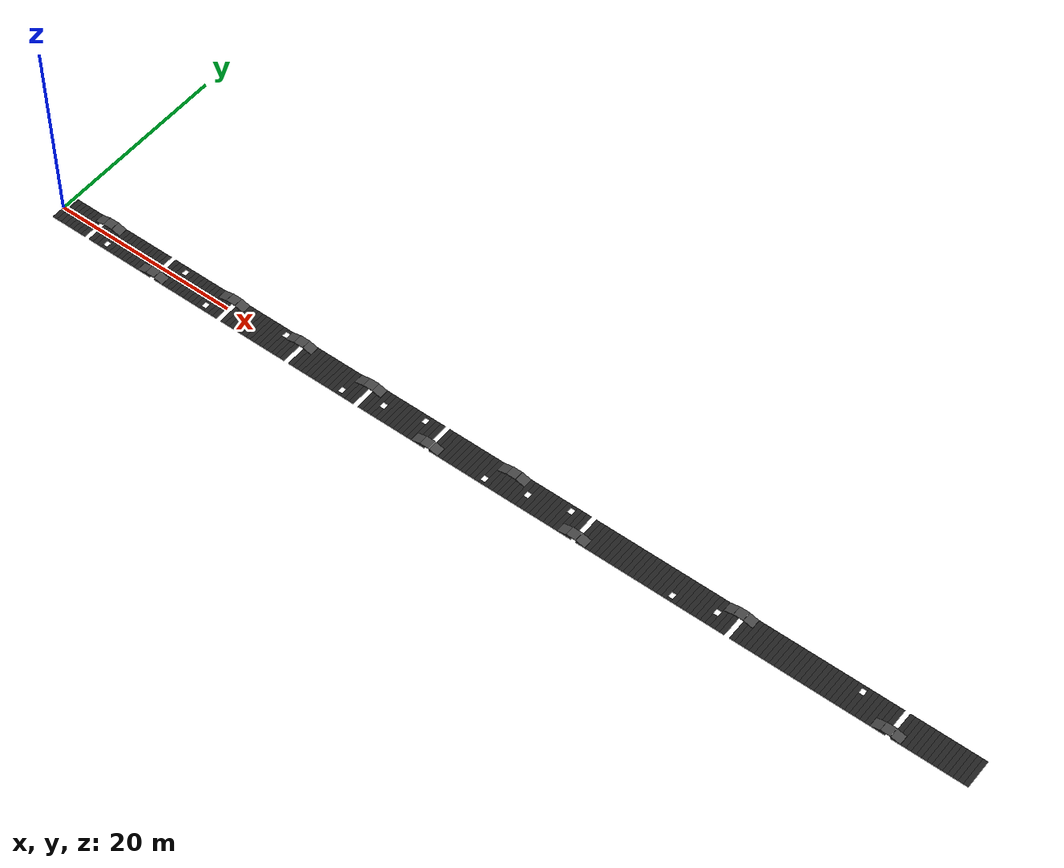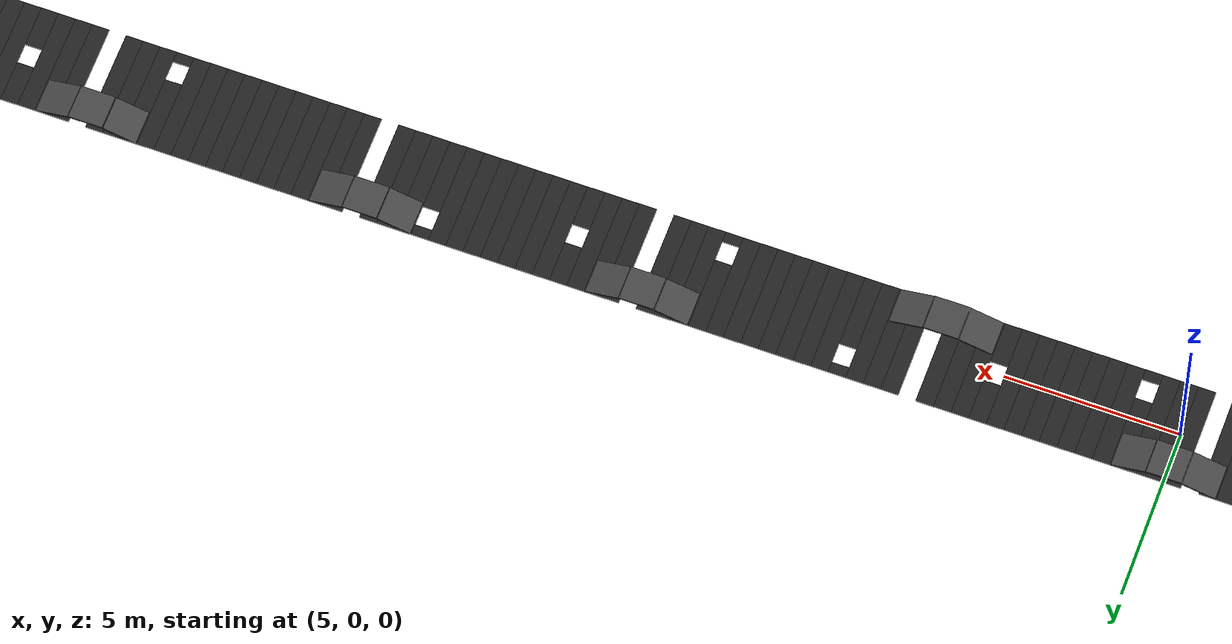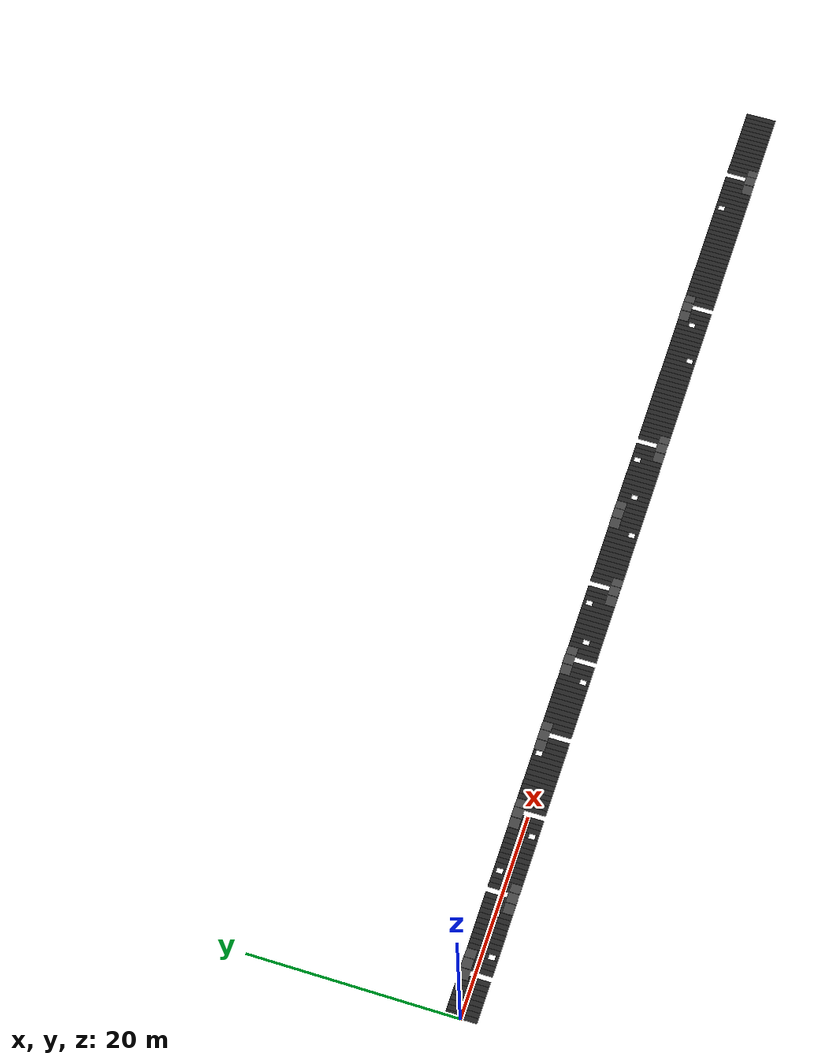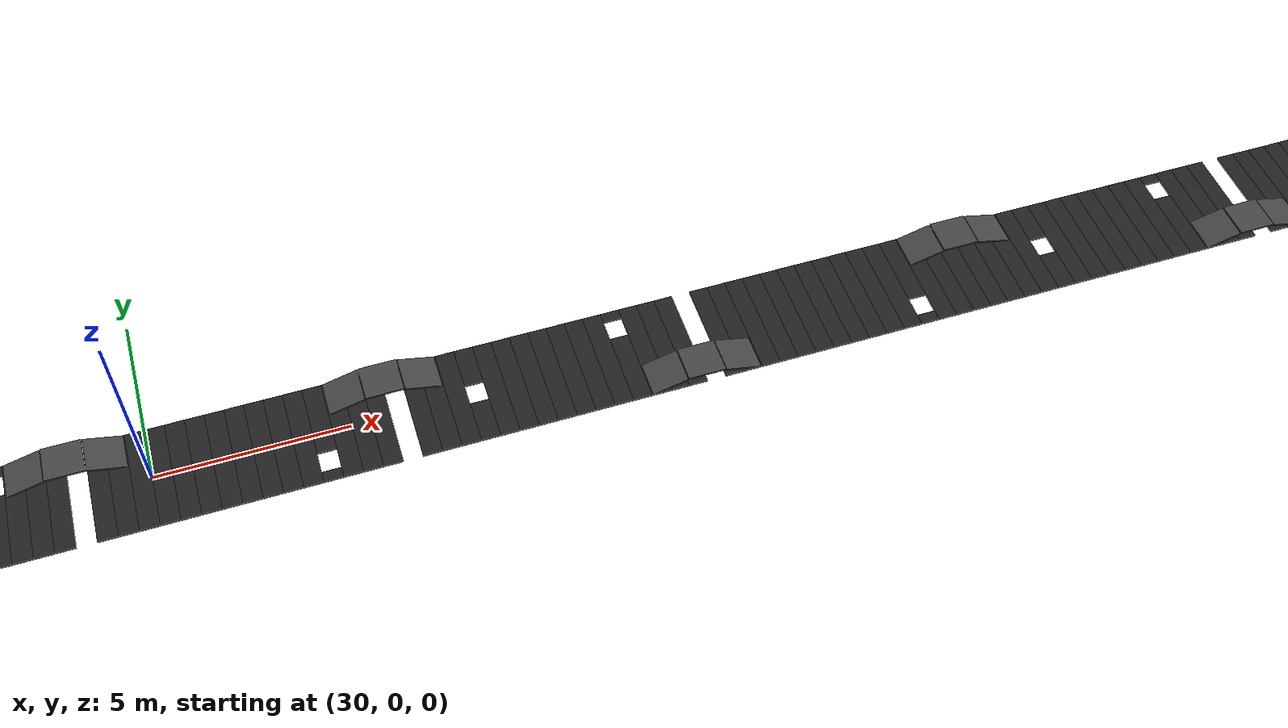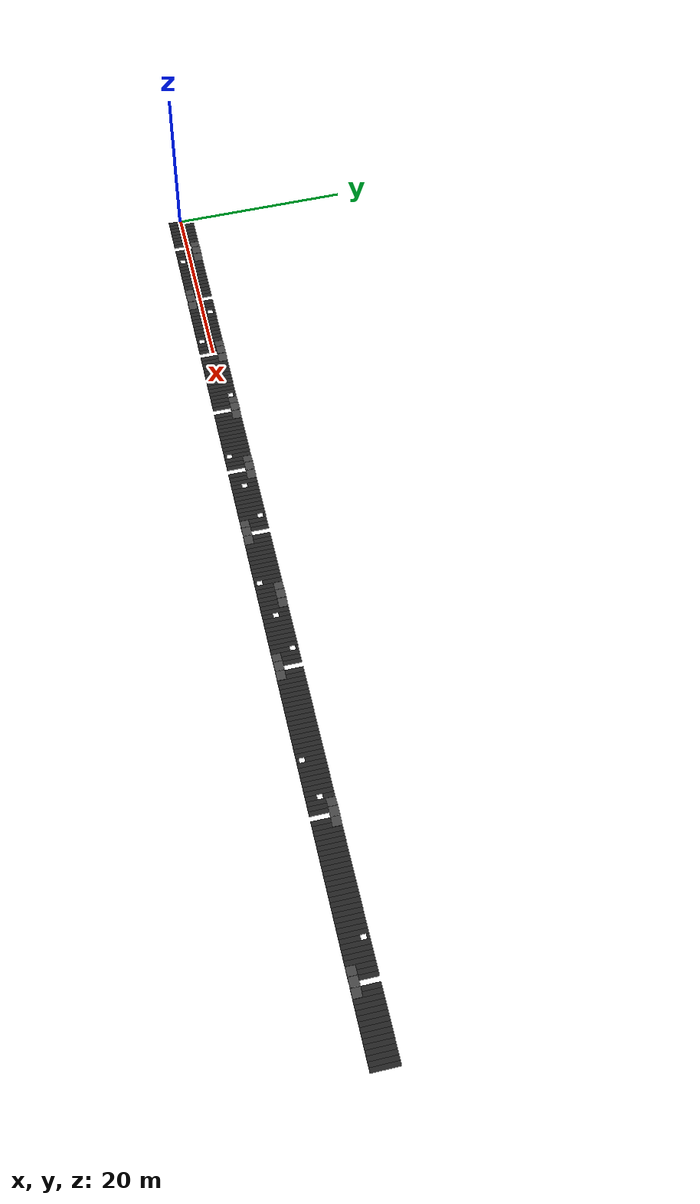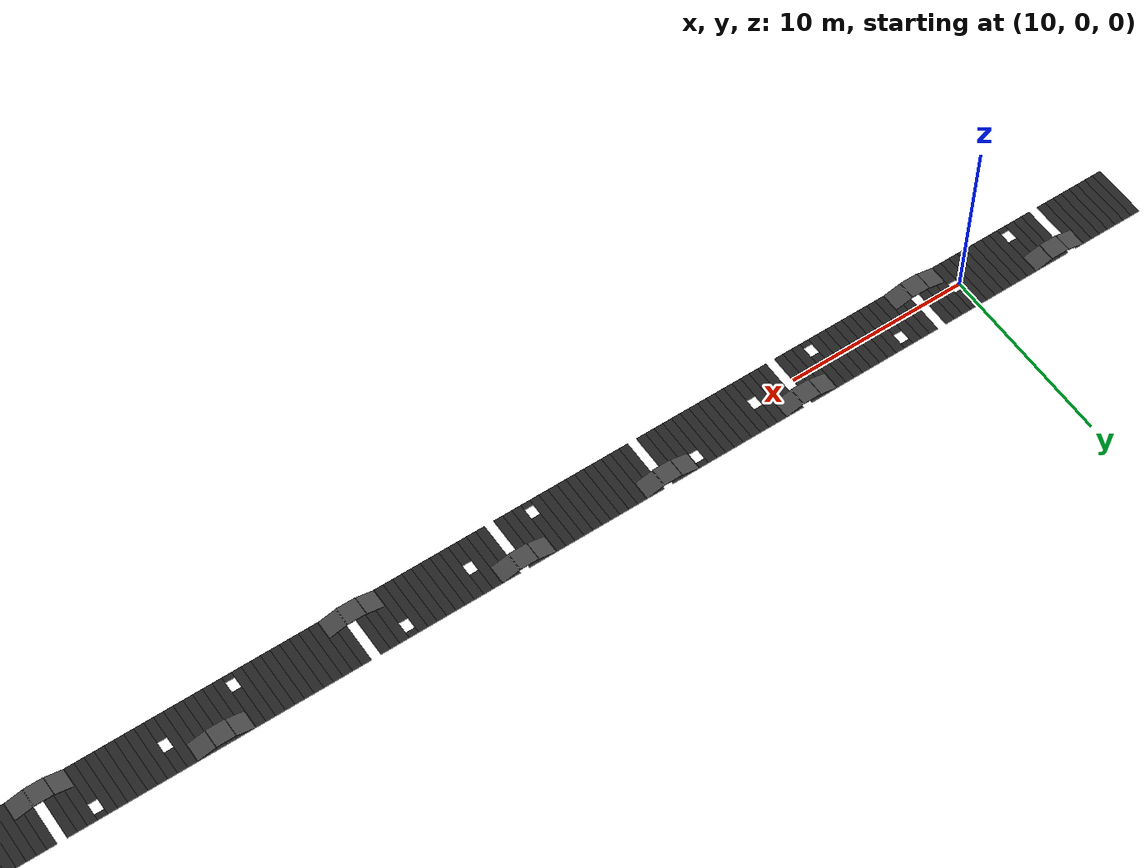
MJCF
<mujoco model="corridor_3x100">
  <compiler angle="degree" autolimits="true"/>
  <option timestep="0.005" gravity="0 0 -9.81"/>
  <size njmax="4000" nconmax="1000"/>
<asset>
    <texture name="tex_grid" type="2d" builtin="checker"
             rgb1="0.1 0.1 0.1" rgb2="0.15 0.15 0.15"
             width="300" height="300"
             mark="edge" markrgb="0.8 0.8 0.8"/>

    <texture name="tex_wall" type="2d" builtin="checker"
             rgb1="0.5 0.5 0.5" rgb2="0.55 0.55 0.55"
             width="300" height="300"/>

    <material name="mat_floor" texture="tex_grid"
              texrepeat="2 2" specular="0.1" shininess="0.1"/>

    <material name="mat_wall" texture="tex_wall"
              texrepeat="1 1" rgba="0.5 0.5 0.5 0" specular="0.3" shininess="0.3"/>

    <material name="mat_bump" texture="tex_wall" rgba="0.5 0.5 0.5 1"
              specular="0.3" shininess="0.3"/>
  </asset>
  <worldbody>
<light name="key_light"
       pos="4 4 4"
       dir="-1 -1 -1"
       directional="true"
       diffuse="1.1 1.1 1.1"  specular="0.4 0.4 0.4"  castshadow="true" />

<light name="fill_light"
       pos="-6 4 2"
       dir="1 -0.5 -1"
       directional="true"
       ambient="0.4 0.4 0.4"   diffuse="0.6 0.6 0.6"   specular="0.2 0.2 0.2"
       castshadow="false" />

    <geom name="wall_left" type="box" size="50.000 0.025 4.000" pos="50.000 -1.525 4.000" material="mat_wall"/>
    <geom name="wall_right" type="box" size="50.000 0.025 4.000" pos="50.000 1.525 4.000" material="mat_wall"/>
    <geom
    name="geom_ramp1_1"
    type="box"
    size="0.5 0.5 0.025"
    pos="4 1 0.15"
    euler="0 -15 0"
    material="mat_bump"
    />
    <geom
    name="geom_ramp1_2"
    type="box"
    size="0.5 0.5 0.025"
    pos="5 1 0.3"
    material="mat_bump"
    />
    <geom
    name="geom_ramp1_3"
    type="box"
    size="0.5 0.5 0.025"
    pos="6 1 0.15"
    euler="0 15 0"
    material="mat_bump"
    />

    <geom
    name="geom_ramp2_1"
    type="box"
    size="0.5 0.5 0.025"
    pos="11 -1 0.15"
    euler="0 -15 0"
    material="mat_bump"
    />
    <geom
    name="geom_ramp2_2"
    type="box"
    size="0.5 0.5 0.025"
    pos="12 -1 0.3"
    material="mat_bump"
    />
    <geom
    name="geom_ramp2_3"
    type="box"
    size="0.5 0.5 0.025"
    pos="13 -1 0.15"
    euler="0 15 0"
    material="mat_bump"
    />

    <geom
    name="geom_ramp3_1"
    type="box"
    size="0.5 0.5 0.025"
    pos="19 1 0.15"
    euler="0 -15 0"
    material="mat_bump"
    />
    <geom
    name="geom_ramp3_2"
    type="box"
    size="0.5 0.5 0.025"
    pos="20 1 0.3"
    material="mat_bump"
    />
    <geom
    name="geom_ramp3_3"
    type="box"
    size="0.5 0.5 0.025"
    pos="21 1 0.15"
    euler="0 15 0"
    material="mat_bump"
    />

    <geom
    name="geom_ramp4_1"
    type="box"
    size="0.5 0.5 0.025"
    pos="27 1 0.15"
    euler="0 -15 0"
    material="mat_bump"
    />
    <geom
    name="geom_ramp4_2"
    type="box"
    size="0.5 0.5 0.025"
    pos="28 1 0.3"
    material="mat_bump"
    />
    <geom
    name="geom_ramp4_3"
    type="box"
    size="0.5 0.5 0.025"
    pos="29 1 0.15"
    euler="0 15 0"
    material="mat_bump"
    />

    <geom
    name="geom_ramp5_1"
    type="box"
    size="0.5 0.5 0.025"
    pos="35 1 0.15"
    euler="0 -15 0"
    material="mat_bump"
    />
    <geom
    name="geom_ramp5_2"
    type="box"
    size="0.5 0.5 0.025"
    pos="36 1 0.3"
    material="mat_bump"
    />
    <geom
    name="geom_ramp5_3"
    type="box"
    size="0.5 0.5 0.025"
    pos="37 1 0.15"
    euler="0 15 0"
    material="mat_bump"
    />

    <geom
    name="geom_ramp6_1"
    type="box"
    size="0.5 0.5 0.025"
    pos="43 -1 0.15"
    euler="0 -15 0"
    material="mat_bump"
    />
    <geom
    name="geom_ramp6_2"
    type="box"
    size="0.5 0.5 0.025"
    pos="44 -1 0.3"
    material="mat_bump"
    />
    <geom
    name="geom_ramp6_3"
    type="box"
    size="0.5 0.5 0.025"
    pos="45 -1 0.15"
    euler="0 15 0"
    material="mat_bump"
    />

    <geom
    name="geom_ramp7_1"
    type="box"
    size="0.5 0.5 0.025"
    pos="51 1 0.15"
    euler="0 -15 0"
    material="mat_bump"
    />
    <geom
    name="geom_ramp7_2"
    type="box"
    size="0.5 0.5 0.025"
    pos="52 1 0.3"
    material="mat_bump"
    />
    <geom
    name="geom_ramp7_3"
    type="box"
    size="0.5 0.5 0.025"
    pos="53 1 0.15"
    euler="0 15 0"
    material="mat_bump"
    />

    <geom
    name="geom_ramp8_1"
    type="box"
    size="0.5 0.5 0.025"
    pos="59 -1 0.15"
    euler="0 -15 0"
    material="mat_bump"
    />
    <geom
    name="geom_ramp8_2"
    type="box"
    size="0.5 0.5 0.025"
    pos="60 -1 0.3"
    material="mat_bump"
    />
    <geom
    name="geom_ramp8_3"
    type="box"
    size="0.5 0.5 0.025"
    pos="61 -1 0.15"
    euler="0 15 0"
    material="mat_bump"
    />

    <geom
    name="geom_ramp9_1"
    type="box"
    size="0.5 0.5 0.025"
    pos="75 1 0.15"
    euler="0 -15 0"
    material="mat_bump"
    />
    <geom
    name="geom_ramp9_2"
    type="box"
    size="0.5 0.5 0.025"
    pos="76 1 0.3"
    material="mat_bump"
    />
    <geom
    name="geom_ramp9_3"
    type="box"
    size="0.5 0.5 0.025"
    pos="77 1 0.15"
    euler="0 15 0"
    material="mat_bump"
    />

    <geom
    name="geom_ramp10_1"
    type="box"
    size="0.5 0.5 0.025"
    pos="91 -1 0.15"
    euler="0 -15 0"
    material="mat_bump"
    />
    <geom
    name="geom_ramp10_2"
    type="box"
    size="0.5 0.5 0.025"
    pos="92 -1 0.3"
    material="mat_bump"
    />
    <geom
    name="geom_ramp10_3"
    type="box"
    size="0.5 0.5 0.025"
    pos="93 -1 0.15"
    euler="0 15 0"
    material="mat_bump"
    />
    <geom type="box" name="cell_0_3" material="mat_floor" size="0.250 1.500 0.025" pos="0.250 0.000 0.025"/>
    <geom type="box" name="cell_1_3" material="mat_floor" size="0.250 1.500 0.025" pos="0.750 0.000 0.025"/>
    <geom type="box" name="cell_2_3" material="mat_floor" size="0.250 1.500 0.025" pos="1.250 0.000 0.025"/>
    <geom type="box" name="cell_3_3" material="mat_floor" size="0.250 1.500 0.025" pos="1.750 0.000 0.025"/>
    <geom type="box" name="cell_4_3" material="mat_floor" size="0.250 1.500 0.025" pos="2.250 0.000 0.025"/>
    <geom type="box" name="cell_5_3" material="mat_floor" size="0.250 1.500 0.025" pos="2.750 0.000 0.025"/>
    <geom type="box" name="cell_6_3" material="mat_floor" size="0.250 1.500 0.025" pos="3.250 0.000 0.025"/>
    <geom type="box" name="cell_7_3" material="mat_floor" size="0.250 1.500 0.025" pos="3.750 0.000 0.025"/>
    <geom type="box" name="cell_9_3" material="mat_floor" size="0.250 1.500 0.025" pos="4.750 0.000 0.025"/>
    <geom type="box" name="cell_10_3" material="mat_floor" size="0.250 1.500 0.025" pos="5.250 0.000 0.025"/>
    <geom type="box" name="cell_11_3" material="mat_floor" size="0.250 1.500 0.025" pos="5.750 0.000 0.025"/>
    <geom type="box" name="cell_12_0" material="mat_floor" size="0.250 0.150 0.025" pos="6.250 -1.350 0.025"/>
    <geom type="box" name="cell_12_3" material="mat_floor" size="0.250 1.050 0.025" pos="6.250 0.450 0.025"/>
    <geom type="box" name="cell_13_3" material="mat_floor" size="0.250 1.500 0.025" pos="6.750 0.000 0.025"/>
    <geom type="box" name="cell_14_3" material="mat_floor" size="0.250 1.500 0.025" pos="7.250 0.000 0.025"/>
    <geom type="box" name="cell_15_3" material="mat_floor" size="0.250 1.500 0.025" pos="7.750 0.000 0.025"/>
    <geom type="box" name="cell_16_3" material="mat_floor" size="0.250 1.500 0.025" pos="8.250 0.000 0.025"/>
    <geom type="box" name="cell_17_3" material="mat_floor" size="0.250 1.500 0.025" pos="8.750 0.000 0.025"/>
    <geom type="box" name="cell_18_3" material="mat_floor" size="0.250 1.500 0.025" pos="9.250 0.000 0.025"/>
    <geom type="box" name="cell_19_3" material="mat_floor" size="0.250 1.500 0.025" pos="9.750 0.000 0.025"/>
    <geom type="box" name="cell_20_1" material="mat_floor" size="0.250 0.600 0.025" pos="10.250 -0.900 0.025"/>
    <geom type="box" name="cell_20_4" material="mat_floor" size="0.250 0.600 0.025" pos="10.250 0.900 0.025"/>
    <geom type="box" name="cell_21_3" material="mat_floor" size="0.250 1.500 0.025" pos="10.750 0.000 0.025"/>
    <geom type="box" name="cell_22_3" material="mat_floor" size="0.250 1.500 0.025" pos="11.250 0.000 0.025"/>
    <geom type="box" name="cell_23_3" material="mat_floor" size="0.250 1.500 0.025" pos="11.750 0.000 0.025"/>
    <geom type="box" name="cell_25_3" material="mat_floor" size="0.250 1.500 0.025" pos="12.750 0.000 0.025"/>
    <geom type="box" name="cell_26_3" material="mat_floor" size="0.250 1.500 0.025" pos="13.250 0.000 0.025"/>
    <geom type="box" name="cell_27_3" material="mat_floor" size="0.250 1.500 0.025" pos="13.750 0.000 0.025"/>
    <geom type="box" name="cell_28_2" material="mat_floor" size="0.250 1.050 0.025" pos="14.250 -0.450 0.025"/>
    <geom type="box" name="cell_28_5" material="mat_floor" size="0.250 0.150 0.025" pos="14.250 1.350 0.025"/>
    <geom type="box" name="cell_29_3" material="mat_floor" size="0.250 1.500 0.025" pos="14.750 0.000 0.025"/>
    <geom type="box" name="cell_30_3" material="mat_floor" size="0.250 1.500 0.025" pos="15.250 0.000 0.025"/>
    <geom type="box" name="cell_31_3" material="mat_floor" size="0.250 1.500 0.025" pos="15.750 0.000 0.025"/>
    <geom type="box" name="cell_32_3" material="mat_floor" size="0.250 1.500 0.025" pos="16.250 0.000 0.025"/>
    <geom type="box" name="cell_33_3" material="mat_floor" size="0.250 1.500 0.025" pos="16.750 0.000 0.025"/>
    <geom type="box" name="cell_34_3" material="mat_floor" size="0.250 1.500 0.025" pos="17.250 0.000 0.025"/>
    <geom type="box" name="cell_35_3" material="mat_floor" size="0.250 1.500 0.025" pos="17.750 0.000 0.025"/>
    <geom type="box" name="cell_36_0" material="mat_floor" size="0.250 0.150 0.025" pos="18.250 -1.350 0.025"/>
    <geom type="box" name="cell_36_3" material="mat_floor" size="0.250 1.050 0.025" pos="18.250 0.450 0.025"/>
    <geom type="box" name="cell_37_3" material="mat_floor" size="0.250 1.500 0.025" pos="18.750 0.000 0.025"/>
    <geom type="box" name="cell_38_3" material="mat_floor" size="0.250 1.500 0.025" pos="19.250 0.000 0.025"/>
    <geom type="box" name="cell_39_3" material="mat_floor" size="0.250 1.500 0.025" pos="19.750 0.000 0.025"/>
    <geom type="box" name="cell_41_3" material="mat_floor" size="0.250 1.500 0.025" pos="20.750 0.000 0.025"/>
    <geom type="box" name="cell_42_3" material="mat_floor" size="0.250 1.500 0.025" pos="21.250 0.000 0.025"/>
    <geom type="box" name="cell_43_3" material="mat_floor" size="0.250 1.500 0.025" pos="21.750 0.000 0.025"/>
    <geom type="box" name="cell_44_1" material="mat_floor" size="0.250 0.600 0.025" pos="22.250 -0.900 0.025"/>
    <geom type="box" name="cell_44_4" material="mat_floor" size="0.250 0.600 0.025" pos="22.250 0.900 0.025"/>
    <geom type="box" name="cell_45_3" material="mat_floor" size="0.250 1.500 0.025" pos="22.750 0.000 0.025"/>
    <geom type="box" name="cell_46_3" material="mat_floor" size="0.250 1.500 0.025" pos="23.250 0.000 0.025"/>
    <geom type="box" name="cell_47_3" material="mat_floor" size="0.250 1.500 0.025" pos="23.750 0.000 0.025"/>
    <geom type="box" name="cell_48_3" material="mat_floor" size="0.250 1.500 0.025" pos="24.250 0.000 0.025"/>
    <geom type="box" name="cell_49_3" material="mat_floor" size="0.250 1.500 0.025" pos="24.750 0.000 0.025"/>
    <geom type="box" name="cell_50_3" material="mat_floor" size="0.250 1.500 0.025" pos="25.250 0.000 0.025"/>
    <geom type="box" name="cell_51_3" material="mat_floor" size="0.250 1.500 0.025" pos="25.750 0.000 0.025"/>
    <geom type="box" name="cell_52_2" material="mat_floor" size="0.250 1.050 0.025" pos="26.250 -0.450 0.025"/>
    <geom type="box" name="cell_52_5" material="mat_floor" size="0.250 0.150 0.025" pos="26.250 1.350 0.025"/>
    <geom type="box" name="cell_53_3" material="mat_floor" size="0.250 1.500 0.025" pos="26.750 0.000 0.025"/>
    <geom type="box" name="cell_54_3" material="mat_floor" size="0.250 1.500 0.025" pos="27.250 0.000 0.025"/>
    <geom type="box" name="cell_55_3" material="mat_floor" size="0.250 1.500 0.025" pos="27.750 0.000 0.025"/>
    <geom type="box" name="cell_57_3" material="mat_floor" size="0.250 1.500 0.025" pos="28.750 0.000 0.025"/>
    <geom type="box" name="cell_58_3" material="mat_floor" size="0.250 1.500 0.025" pos="29.250 0.000 0.025"/>
    <geom type="box" name="cell_59_3" material="mat_floor" size="0.250 1.500 0.025" pos="29.750 0.000 0.025"/>
    <geom type="box" name="cell_60_3" material="mat_floor" size="0.250 1.500 0.025" pos="30.250 0.000 0.025"/>
    <geom type="box" name="cell_61_3" material="mat_floor" size="0.250 1.500 0.025" pos="30.750 0.000 0.025"/>
    <geom type="box" name="cell_62_3" material="mat_floor" size="0.250 1.500 0.025" pos="31.250 0.000 0.025"/>
    <geom type="box" name="cell_63_3" material="mat_floor" size="0.250 1.500 0.025" pos="31.750 0.000 0.025"/>
    <geom type="box" name="cell_64_3" material="mat_floor" size="0.250 1.500 0.025" pos="32.250 0.000 0.025"/>
    <geom type="box" name="cell_65_3" material="mat_floor" size="0.250 1.500 0.025" pos="32.750 0.000 0.025"/>
    <geom type="box" name="cell_66_3" material="mat_floor" size="0.250 1.500 0.025" pos="33.250 0.000 0.025"/>
    <geom type="box" name="cell_67_3" material="mat_floor" size="0.250 1.500 0.025" pos="33.750 0.000 0.025"/>
    <geom type="box" name="cell_68_0" material="mat_floor" size="0.250 0.150 0.025" pos="34.250 -1.350 0.025"/>
    <geom type="box" name="cell_68_3" material="mat_floor" size="0.250 1.050 0.025" pos="34.250 0.450 0.025"/>
    <geom type="box" name="cell_69_3" material="mat_floor" size="0.250 1.500 0.025" pos="34.750 0.000 0.025"/>
    <geom type="box" name="cell_70_3" material="mat_floor" size="0.250 1.500 0.025" pos="35.250 0.000 0.025"/>
    <geom type="box" name="cell_71_3" material="mat_floor" size="0.250 1.500 0.025" pos="35.750 0.000 0.025"/>
    <geom type="box" name="cell_73_3" material="mat_floor" size="0.250 1.500 0.025" pos="36.750 0.000 0.025"/>
    <geom type="box" name="cell_74_3" material="mat_floor" size="0.250 1.500 0.025" pos="37.250 0.000 0.025"/>
    <geom type="box" name="cell_75_3" material="mat_floor" size="0.250 1.500 0.025" pos="37.750 0.000 0.025"/>
    <geom type="box" name="cell_76_1" material="mat_floor" size="0.250 0.600 0.025" pos="38.250 -0.900 0.025"/>
    <geom type="box" name="cell_76_4" material="mat_floor" size="0.250 0.600 0.025" pos="38.250 0.900 0.025"/>
    <geom type="box" name="cell_77_3" material="mat_floor" size="0.250 1.500 0.025" pos="38.750 0.000 0.025"/>
    <geom type="box" name="cell_78_3" material="mat_floor" size="0.250 1.500 0.025" pos="39.250 0.000 0.025"/>
    <geom type="box" name="cell_79_3" material="mat_floor" size="0.250 1.500 0.025" pos="39.750 0.000 0.025"/>
    <geom type="box" name="cell_80_3" material="mat_floor" size="0.250 1.500 0.025" pos="40.250 0.000 0.025"/>
    <geom type="box" name="cell_81_3" material="mat_floor" size="0.250 1.500 0.025" pos="40.750 0.000 0.025"/>
    <geom type="box" name="cell_82_3" material="mat_floor" size="0.250 1.500 0.025" pos="41.250 0.000 0.025"/>
    <geom type="box" name="cell_83_3" material="mat_floor" size="0.250 1.500 0.025" pos="41.750 0.000 0.025"/>
    <geom type="box" name="cell_84_2" material="mat_floor" size="0.250 1.050 0.025" pos="42.250 -0.450 0.025"/>
    <geom type="box" name="cell_84_5" material="mat_floor" size="0.250 0.150 0.025" pos="42.250 1.350 0.025"/>
    <geom type="box" name="cell_85_3" material="mat_floor" size="0.250 1.500 0.025" pos="42.750 0.000 0.025"/>
    <geom type="box" name="cell_86_3" material="mat_floor" size="0.250 1.500 0.025" pos="43.250 0.000 0.025"/>
    <geom type="box" name="cell_87_3" material="mat_floor" size="0.250 1.500 0.025" pos="43.750 0.000 0.025"/>
    <geom type="box" name="cell_89_3" material="mat_floor" size="0.250 1.500 0.025" pos="44.750 0.000 0.025"/>
    <geom type="box" name="cell_90_3" material="mat_floor" size="0.250 1.500 0.025" pos="45.250 0.000 0.025"/>
    <geom type="box" name="cell_91_3" material="mat_floor" size="0.250 1.500 0.025" pos="45.750 0.000 0.025"/>
    <geom type="box" name="cell_92_3" material="mat_floor" size="0.250 1.500 0.025" pos="46.250 0.000 0.025"/>
    <geom type="box" name="cell_93_3" material="mat_floor" size="0.250 1.500 0.025" pos="46.750 0.000 0.025"/>
    <geom type="box" name="cell_94_3" material="mat_floor" size="0.250 1.500 0.025" pos="47.250 0.000 0.025"/>
    <geom type="box" name="cell_95_3" material="mat_floor" size="0.250 1.500 0.025" pos="47.750 0.000 0.025"/>
    <geom type="box" name="cell_96_3" material="mat_floor" size="0.250 1.500 0.025" pos="48.250 0.000 0.025"/>
    <geom type="box" name="cell_97_3" material="mat_floor" size="0.250 1.500 0.025" pos="48.750 0.000 0.025"/>
    <geom type="box" name="cell_98_3" material="mat_floor" size="0.250 1.500 0.025" pos="49.250 0.000 0.025"/>
    <geom type="box" name="cell_99_3" material="mat_floor" size="0.250 1.500 0.025" pos="49.750 0.000 0.025"/>
    <geom type="box" name="cell_100_0" material="mat_floor" size="0.250 0.150 0.025" pos="50.250 -1.350 0.025"/>
    <geom type="box" name="cell_100_3" material="mat_floor" size="0.250 1.050 0.025" pos="50.250 0.450 0.025"/>
    <geom type="box" name="cell_101_3" material="mat_floor" size="0.250 1.500 0.025" pos="50.750 0.000 0.025"/>
    <geom type="box" name="cell_102_3" material="mat_floor" size="0.250 1.500 0.025" pos="51.250 0.000 0.025"/>
    <geom type="box" name="cell_103_3" material="mat_floor" size="0.250 1.500 0.025" pos="51.750 0.000 0.025"/>
    <geom type="box" name="cell_104_3" material="mat_floor" size="0.250 1.500 0.025" pos="52.250 0.000 0.025"/>
    <geom type="box" name="cell_105_3" material="mat_floor" size="0.250 1.500 0.025" pos="52.750 0.000 0.025"/>
    <geom type="box" name="cell_106_3" material="mat_floor" size="0.250 1.500 0.025" pos="53.250 0.000 0.025"/>
    <geom type="box" name="cell_107_3" material="mat_floor" size="0.250 1.500 0.025" pos="53.750 0.000 0.025"/>
    <geom type="box" name="cell_108_1" material="mat_floor" size="0.250 0.600 0.025" pos="54.250 -0.900 0.025"/>
    <geom type="box" name="cell_108_4" material="mat_floor" size="0.250 0.600 0.025" pos="54.250 0.900 0.025"/>
    <geom type="box" name="cell_109_3" material="mat_floor" size="0.250 1.500 0.025" pos="54.750 0.000 0.025"/>
    <geom type="box" name="cell_110_3" material="mat_floor" size="0.250 1.500 0.025" pos="55.250 0.000 0.025"/>
    <geom type="box" name="cell_111_3" material="mat_floor" size="0.250 1.500 0.025" pos="55.750 0.000 0.025"/>
    <geom type="box" name="cell_112_3" material="mat_floor" size="0.250 1.500 0.025" pos="56.250 0.000 0.025"/>
    <geom type="box" name="cell_113_3" material="mat_floor" size="0.250 1.500 0.025" pos="56.750 0.000 0.025"/>
    <geom type="box" name="cell_114_3" material="mat_floor" size="0.250 1.500 0.025" pos="57.250 0.000 0.025"/>
    <geom type="box" name="cell_115_3" material="mat_floor" size="0.250 1.500 0.025" pos="57.750 0.000 0.025"/>
    <geom type="box" name="cell_116_2" material="mat_floor" size="0.250 1.050 0.025" pos="58.250 -0.450 0.025"/>
    <geom type="box" name="cell_116_5" material="mat_floor" size="0.250 0.150 0.025" pos="58.250 1.350 0.025"/>
    <geom type="box" name="cell_117_3" material="mat_floor" size="0.250 1.500 0.025" pos="58.750 0.000 0.025"/>
    <geom type="box" name="cell_118_3" material="mat_floor" size="0.250 1.500 0.025" pos="59.250 0.000 0.025"/>
    <geom type="box" name="cell_119_3" material="mat_floor" size="0.250 1.500 0.025" pos="59.750 0.000 0.025"/>
    <geom type="box" name="cell_121_3" material="mat_floor" size="0.250 1.500 0.025" pos="60.750 0.000 0.025"/>
    <geom type="box" name="cell_122_3" material="mat_floor" size="0.250 1.500 0.025" pos="61.250 0.000 0.025"/>
    <geom type="box" name="cell_123_3" material="mat_floor" size="0.250 1.500 0.025" pos="61.750 0.000 0.025"/>
    <geom type="box" name="cell_124_3" material="mat_floor" size="0.250 1.500 0.025" pos="62.250 0.000 0.025"/>
    <geom type="box" name="cell_125_3" material="mat_floor" size="0.250 1.500 0.025" pos="62.750 0.000 0.025"/>
    <geom type="box" name="cell_126_3" material="mat_floor" size="0.250 1.500 0.025" pos="63.250 0.000 0.025"/>
    <geom type="box" name="cell_127_3" material="mat_floor" size="0.250 1.500 0.025" pos="63.750 0.000 0.025"/>
    <geom type="box" name="cell_128_3" material="mat_floor" size="0.250 1.500 0.025" pos="64.250 0.000 0.025"/>
    <geom type="box" name="cell_129_3" material="mat_floor" size="0.250 1.500 0.025" pos="64.750 0.000 0.025"/>
    <geom type="box" name="cell_130_3" material="mat_floor" size="0.250 1.500 0.025" pos="65.250 0.000 0.025"/>
    <geom type="box" name="cell_131_3" material="mat_floor" size="0.250 1.500 0.025" pos="65.750 0.000 0.025"/>
    <geom type="box" name="cell_132_3" material="mat_floor" size="0.250 1.500 0.025" pos="66.250 0.000 0.025"/>
    <geom type="box" name="cell_133_3" material="mat_floor" size="0.250 1.500 0.025" pos="66.750 0.000 0.025"/>
    <geom type="box" name="cell_134_3" material="mat_floor" size="0.250 1.500 0.025" pos="67.250 0.000 0.025"/>
    <geom type="box" name="cell_135_3" material="mat_floor" size="0.250 1.500 0.025" pos="67.750 0.000 0.025"/>
    <geom type="box" name="cell_136_3" material="mat_floor" size="0.250 1.500 0.025" pos="68.250 0.000 0.025"/>
    <geom type="box" name="cell_137_3" material="mat_floor" size="0.250 1.500 0.025" pos="68.750 0.000 0.025"/>
    <geom type="box" name="cell_138_3" material="mat_floor" size="0.250 1.500 0.025" pos="69.250 0.000 0.025"/>
    <geom type="box" name="cell_139_3" material="mat_floor" size="0.250 1.500 0.025" pos="69.750 0.000 0.025"/>
    <geom type="box" name="cell_140_0" material="mat_floor" size="0.250 0.150 0.025" pos="70.250 -1.350 0.025"/>
    <geom type="box" name="cell_140_3" material="mat_floor" size="0.250 1.050 0.025" pos="70.250 0.450 0.025"/>
    <geom type="box" name="cell_141_3" material="mat_floor" size="0.250 1.500 0.025" pos="70.750 0.000 0.025"/>
    <geom type="box" name="cell_142_3" material="mat_floor" size="0.250 1.500 0.025" pos="71.250 0.000 0.025"/>
    <geom type="box" name="cell_143_3" material="mat_floor" size="0.250 1.500 0.025" pos="71.750 0.000 0.025"/>
    <geom type="box" name="cell_144_3" material="mat_floor" size="0.250 1.500 0.025" pos="72.250 0.000 0.025"/>
    <geom type="box" name="cell_145_3" material="mat_floor" size="0.250 1.500 0.025" pos="72.750 0.000 0.025"/>
    <geom type="box" name="cell_146_3" material="mat_floor" size="0.250 1.500 0.025" pos="73.250 0.000 0.025"/>
    <geom type="box" name="cell_147_3" material="mat_floor" size="0.250 1.500 0.025" pos="73.750 0.000 0.025"/>
    <geom type="box" name="cell_148_1" material="mat_floor" size="0.250 0.600 0.025" pos="74.250 -0.900 0.025"/>
    <geom type="box" name="cell_148_4" material="mat_floor" size="0.250 0.600 0.025" pos="74.250 0.900 0.025"/>
    <geom type="box" name="cell_149_3" material="mat_floor" size="0.250 1.500 0.025" pos="74.750 0.000 0.025"/>
    <geom type="box" name="cell_150_3" material="mat_floor" size="0.250 1.500 0.025" pos="75.250 0.000 0.025"/>
    <geom type="box" name="cell_151_3" material="mat_floor" size="0.250 1.500 0.025" pos="75.750 0.000 0.025"/>
    <geom type="box" name="cell_153_3" material="mat_floor" size="0.250 1.500 0.025" pos="76.750 0.000 0.025"/>
    <geom type="box" name="cell_154_3" material="mat_floor" size="0.250 1.500 0.025" pos="77.250 0.000 0.025"/>
    <geom type="box" name="cell_155_3" material="mat_floor" size="0.250 1.500 0.025" pos="77.750 0.000 0.025"/>
    <geom type="box" name="cell_156_3" material="mat_floor" size="0.250 1.500 0.025" pos="78.250 0.000 0.025"/>
    <geom type="box" name="cell_157_3" material="mat_floor" size="0.250 1.500 0.025" pos="78.750 0.000 0.025"/>
    <geom type="box" name="cell_158_3" material="mat_floor" size="0.250 1.500 0.025" pos="79.250 0.000 0.025"/>
    <geom type="box" name="cell_159_3" material="mat_floor" size="0.250 1.500 0.025" pos="79.750 0.000 0.025"/>
    <geom type="box" name="cell_160_3" material="mat_floor" size="0.250 1.500 0.025" pos="80.250 0.000 0.025"/>
    <geom type="box" name="cell_161_3" material="mat_floor" size="0.250 1.500 0.025" pos="80.750 0.000 0.025"/>
    <geom type="box" name="cell_162_3" material="mat_floor" size="0.250 1.500 0.025" pos="81.250 0.000 0.025"/>
    <geom type="box" name="cell_163_3" material="mat_floor" size="0.250 1.500 0.025" pos="81.750 0.000 0.025"/>
    <geom type="box" name="cell_164_3" material="mat_floor" size="0.250 1.500 0.025" pos="82.250 0.000 0.025"/>
    <geom type="box" name="cell_165_3" material="mat_floor" size="0.250 1.500 0.025" pos="82.750 0.000 0.025"/>
    <geom type="box" name="cell_166_3" material="mat_floor" size="0.250 1.500 0.025" pos="83.250 0.000 0.025"/>
    <geom type="box" name="cell_167_3" material="mat_floor" size="0.250 1.500 0.025" pos="83.750 0.000 0.025"/>
    <geom type="box" name="cell_168_3" material="mat_floor" size="0.250 1.500 0.025" pos="84.250 0.000 0.025"/>
    <geom type="box" name="cell_169_3" material="mat_floor" size="0.250 1.500 0.025" pos="84.750 0.000 0.025"/>
    <geom type="box" name="cell_170_3" material="mat_floor" size="0.250 1.500 0.025" pos="85.250 0.000 0.025"/>
    <geom type="box" name="cell_171_3" material="mat_floor" size="0.250 1.500 0.025" pos="85.750 0.000 0.025"/>
    <geom type="box" name="cell_172_3" material="mat_floor" size="0.250 1.500 0.025" pos="86.250 0.000 0.025"/>
    <geom type="box" name="cell_173_3" material="mat_floor" size="0.250 1.500 0.025" pos="86.750 0.000 0.025"/>
    <geom type="box" name="cell_174_3" material="mat_floor" size="0.250 1.500 0.025" pos="87.250 0.000 0.025"/>
    <geom type="box" name="cell_175_3" material="mat_floor" size="0.250 1.500 0.025" pos="87.750 0.000 0.025"/>
    <geom type="box" name="cell_176_2" material="mat_floor" size="0.250 1.050 0.025" pos="88.250 -0.450 0.025"/>
    <geom type="box" name="cell_176_5" material="mat_floor" size="0.250 0.150 0.025" pos="88.250 1.350 0.025"/>
    <geom type="box" name="cell_177_3" material="mat_floor" size="0.250 1.500 0.025" pos="88.750 0.000 0.025"/>
    <geom type="box" name="cell_178_3" material="mat_floor" size="0.250 1.500 0.025" pos="89.250 0.000 0.025"/>
    <geom type="box" name="cell_179_3" material="mat_floor" size="0.250 1.500 0.025" pos="89.750 0.000 0.025"/>
    <geom type="box" name="cell_180_3" material="mat_floor" size="0.250 1.500 0.025" pos="90.250 0.000 0.025"/>
    <geom type="box" name="cell_181_3" material="mat_floor" size="0.250 1.500 0.025" pos="90.750 0.000 0.025"/>
    <geom type="box" name="cell_182_3" material="mat_floor" size="0.250 1.500 0.025" pos="91.250 0.000 0.025"/>
    <geom type="box" name="cell_183_3" material="mat_floor" size="0.250 1.500 0.025" pos="91.750 0.000 0.025"/>
    <geom type="box" name="cell_185_3" material="mat_floor" size="0.250 1.500 0.025" pos="92.750 0.000 0.025"/>
    <geom type="box" name="cell_186_3" material="mat_floor" size="0.250 1.500 0.025" pos="93.250 0.000 0.025"/>
    <geom type="box" name="cell_187_3" material="mat_floor" size="0.250 1.500 0.025" pos="93.750 0.000 0.025"/>
    <geom type="box" name="cell_188_3" material="mat_floor" size="0.250 1.500 0.025" pos="94.250 0.000 0.025"/>
    <geom type="box" name="cell_189_3" material="mat_floor" size="0.250 1.500 0.025" pos="94.750 0.000 0.025"/>
    <geom type="box" name="cell_190_3" material="mat_floor" size="0.250 1.500 0.025" pos="95.250 0.000 0.025"/>
    <geom type="box" name="cell_191_3" material="mat_floor" size="0.250 1.500 0.025" pos="95.750 0.000 0.025"/>
    <geom type="box" name="cell_192_3" material="mat_floor" size="0.250 1.500 0.025" pos="96.250 0.000 0.025"/>
    <geom type="box" name="cell_193_3" material="mat_floor" size="0.250 1.500 0.025" pos="96.750 0.000 0.025"/>
    <geom type="box" name="cell_194_3" material="mat_floor" size="0.250 1.500 0.025" pos="97.250 0.000 0.025"/>
    <geom type="box" name="cell_195_3" material="mat_floor" size="0.250 1.500 0.025" pos="97.750 0.000 0.025"/>
    <geom type="box" name="cell_196_3" material="mat_floor" size="0.250 1.500 0.025" pos="98.250 0.000 0.025"/>
    <geom type="box" name="cell_197_3" material="mat_floor" size="0.250 1.500 0.025" pos="98.750 0.000 0.025"/>
    <geom type="box" name="cell_198_3" material="mat_floor" size="0.250 1.500 0.025" pos="99.250 0.000 0.025"/>
    <geom type="box" name="cell_199_3" material="mat_floor" size="0.250 1.500 0.025" pos="99.750 0.000 0.025"/>
  </worldbody>
</mujoco>
